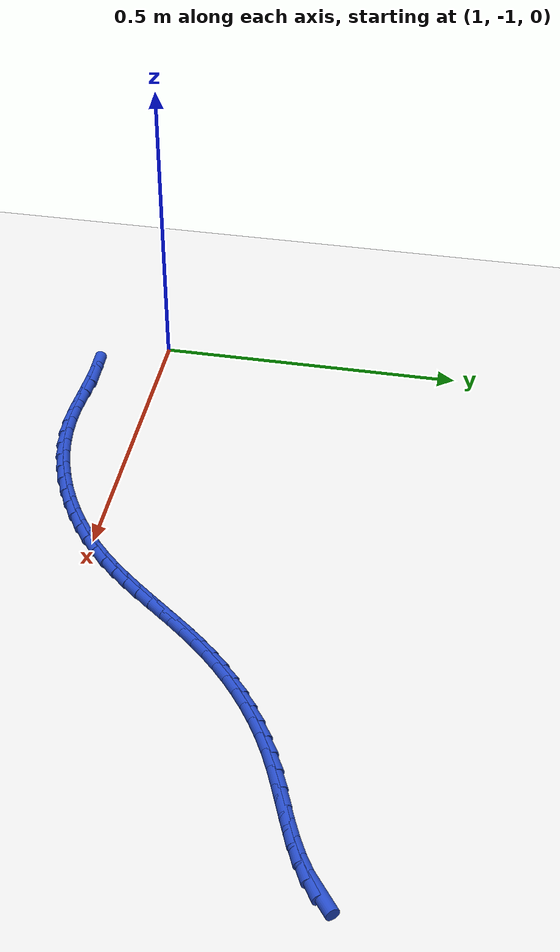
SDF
<sdf version="1.6">
 <world name="default">
  <model name="ground_plane">
   <static>1</static>
   <link name="link">
    <collision name="collision">
     <geometry><plane><normal>0 0 1</normal><size>100 100</size></plane></geometry>
     <surface><friction><ode><mu>100</mu><mu2>50</mu2></ode></friction></surface>
    </collision>
    <visual name="visual">
     <cast_shadows>0</cast_shadows>
     <geometry><plane><normal>0 0 1</normal><size>100 100</size></plane></geometry>
     <material>
      <script><uri>file://media/materials/scripts/gazebo.material</uri><name>Gazebo/WhiteGlow</name></script>
     </material>
    </visual>
   </link>
  </model>
  <model name="line">
   <link name="link_146">
    <pose>2.069440715215967 -0.5567842232743673 0.01 0 1.57 0.6580714703849816</pose>
    <collision name="collision">
     <geometry><cylinder><radius>0.01</radius><length>0.08</length></cylinder></geometry>
    </collision>
    <visual name="visual">
     <material>
      <script><name>Gazebo/Blue</name><uri>file://media/materials/scripts/gazebo.material</uri></script>
     </material>
     <geometry><cylinder><radius>0.01</radius><length>0.08</length></cylinder></geometry>
    </visual>
   </link>
   <link name="link_147">
    <pose>2.048687214246349 -0.5728270815063439 0.01 0 1.57 0.5461949963556508</pose>
    <collision name="collision">
     <geometry><cylinder><radius>0.01</radius><length>0.08</length></cylinder></geometry>
    </collision>
    <visual name="visual">
     <material>
      <script><name>Gazebo/Blue</name><uri>file://media/materials/scripts/gazebo.material</uri></script>
     </material>
     <geometry><cylinder><radius>0.01</radius><length>0.08</length></cylinder></geometry>
    </visual>
   </link>
   <link name="link_148">
    <pose>2.025479815613856 -0.5869344431668911 0.01 0 1.57 0.46634864555167305</pose>
    <collision name="collision">
     <geometry><cylinder><radius>0.01</radius><length>0.08</length></cylinder></geometry>
    </collision>
    <visual name="visual">
     <material>
      <script><name>Gazebo/Blue</name><uri>file://media/materials/scripts/gazebo.material</uri></script>
     </material>
     <geometry><cylinder><radius>0.01</radius><length>0.08</length></cylinder></geometry>
    </visual>
   </link>
   <link name="link_149">
    <pose>2.0003519096016316 -0.5995833503525048 0.01 0 1.57 0.4145348264032584</pose>
    <collision name="collision">
     <geometry><cylinder><radius>0.01</radius><length>0.08</length></cylinder></geometry>
    </collision>
    <visual name="visual">
     <material>
      <script><name>Gazebo/Blue</name><uri>file://media/materials/scripts/gazebo.material</uri></script>
     </material>
     <geometry><cylinder><radius>0.01</radius><length>0.08</length></cylinder></geometry>
    </visual>
   </link>
   <link name="link_150">
    <pose>1.9738368864928213 -0.6112508451596809 0.01 0 1.57 0.38727967800728896</pose>
    <collision name="collision">
     <geometry><cylinder><radius>0.01</radius><length>0.08</length></cylinder></geometry>
    </collision>
    <visual name="visual">
     <material>
      <script><name>Gazebo/Blue</name><uri>file://media/materials/scripts/gazebo.material</uri></script>
     </material>
     <geometry><cylinder><radius>0.01</radius><length>0.08</length></cylinder></geometry>
    </visual>
   </link>
   <link name="link_151">
    <pose>1.9464681365705672 -0.6224139696849148 0.01 0 1.57 0.3823780421875811</pose>
    <collision name="collision">
     <geometry><cylinder><radius>0.01</radius><length>0.08</length></cylinder></geometry>
    </collision>
    <visual name="visual">
     <material>
      <script><name>Gazebo/Blue</name><uri>file://media/materials/scripts/gazebo.material</uri></script>
     </material>
     <geometry><cylinder><radius>0.01</radius><length>0.08</length></cylinder></geometry>
    </visual>
   </link>
   <link name="link_152">
    <pose>1.918779050118015 -0.6335497660247026 0.01 0 1.57 0.3990371981720585</pose>
    <collision name="collision">
     <geometry><cylinder><radius>0.01</radius><length>0.08</length></cylinder></geometry>
    </collision>
    <visual name="visual">
     <material>
      <script><name>Gazebo/Blue</name><uri>file://media/materials/scripts/gazebo.material</uri></script>
     </material>
     <geometry><cylinder><radius>0.01</radius><length>0.08</length></cylinder></geometry>
    </visual>
   </link>
   <link name="link_153">
    <pose>1.8913030174183088 -0.64513527627554 0.01 0 1.57 0.4375475421445148</pose>
    <collision name="collision">
     <geometry><cylinder><radius>0.01</radius><length>0.08</length></cylinder></geometry>
    </collision>
    <visual name="visual">
     <material>
      <script><name>Gazebo/Blue</name><uri>file://media/materials/scripts/gazebo.material</uri></script>
     </material>
     <geometry><cylinder><radius>0.01</radius><length>0.08</length></cylinder></geometry>
    </visual>
   </link>
   <link name="link_154">
    <pose>1.8645674080098094 -0.6576418727206602 0.01 0 1.57 0.489168060065895</pose>
    <collision name="collision">
     <geometry><cylinder><radius>0.01</radius><length>0.08</length></cylinder></geometry>
    </collision>
    <visual name="visual">
     <material>
      <script><name>Gazebo/Blue</name><uri>file://media/materials/scripts/gazebo.material</uri></script>
     </material>
     <geometry><cylinder><radius>0.01</radius><length>0.08</length></cylinder></geometry>
    </visual>
   </link>
   <link name="link_155">
    <pose>1.8388675565687087 -0.6713224174113418 0.01 0 1.57 0.5411104046782403</pose>
    <collision name="collision">
     <geometry><cylinder><radius>0.01</radius><length>0.08</length></cylinder></geometry>
    </collision>
    <visual name="visual">
     <material>
      <script><name>Gazebo/Blue</name><uri>file://media/materials/scripts/gazebo.material</uri></script>
     </material>
     <geometry><cylinder><radius>0.01</radius><length>0.08</length></cylinder></geometry>
    </visual>
   </link>
   <link name="link_156">
    <pose>1.8141985406134744 -0.6861470163484766 0.01 0 1.57 0.5922213272752584</pose>
    <collision name="collision">
     <geometry><cylinder><radius>0.01</radius><length>0.08</length></cylinder></geometry>
    </collision>
    <visual name="visual">
     <material>
      <script><name>Gazebo/Blue</name><uri>file://media/materials/scripts/gazebo.material</uri></script>
     </material>
     <geometry><cylinder><radius>0.01</radius><length>0.08</length></cylinder></geometry>
    </visual>
   </link>
   <link name="link_157">
    <pose>1.790535487666208 -0.7020669883632479 0.01 0 1.57 0.6422355987090467</pose>
    <collision name="collision">
     <geometry><cylinder><radius>0.01</radius><length>0.08</length></cylinder></geometry>
    </collision>
    <visual name="visual">
     <material>
      <script><name>Gazebo/Blue</name><uri>file://media/materials/scripts/gazebo.material</uri></script>
     </material>
     <geometry><cylinder><radius>0.01</radius><length>0.08</length></cylinder></geometry>
    </visual>
   </link>
   <link name="link_158">
    <pose>1.7678535252490102 -0.7190336522868385 0.01 0 1.57 0.6909201364588902</pose>
    <collision name="collision">
     <geometry><cylinder><radius>0.01</radius><length>0.08</length></cylinder></geometry>
    </collision>
    <visual name="visual">
     <material>
      <script><name>Gazebo/Blue</name><uri>file://media/materials/scripts/gazebo.material</uri></script>
     </material>
     <geometry><cylinder><radius>0.01</radius><length>0.08</length></cylinder></geometry>
    </visual>
   </link>
   <link name="link_159">
    <pose>1.7461277808839815 -0.7369983269504318 0.01 0 1.57 0.7380784349796908</pose>
    <collision name="collision">
     <geometry><cylinder><radius>0.01</radius><length>0.08</length></cylinder></geometry>
    </collision>
    <visual name="visual">
     <material>
      <script><name>Gazebo/Blue</name><uri>file://media/materials/scripts/gazebo.material</uri></script>
     </material>
     <geometry><cylinder><radius>0.01</radius><length>0.08</length></cylinder></geometry>
    </visual>
   </link>
   <link name="link_160">
    <pose>1.7253333820932222 -0.7559123311852101 0.01 0 1.57 0.7835526164045088</pose>
    <collision name="collision">
     <geometry><cylinder><radius>0.01</radius><length>0.08</length></cylinder></geometry>
    </collision>
    <visual name="visual">
     <material>
      <script><name>Gazebo/Blue</name><uri>file://media/materials/scripts/gazebo.material</uri></script>
     </material>
     <geometry><cylinder><radius>0.01</radius><length>0.08</length></cylinder></geometry>
    </visual>
   </link>
   <link name="link_161">
    <pose>1.7054454563988333 -0.7757269838223568 0.01 0 1.57 0.8271576795718446</pose>
    <collision name="collision">
     <geometry><cylinder><radius>0.01</radius><length>0.08</length></cylinder></geometry>
    </collision>
    <visual name="visual">
     <material>
      <script><name>Gazebo/Blue</name><uri>file://media/materials/scripts/gazebo.material</uri></script>
     </material>
     <geometry><cylinder><radius>0.01</radius><length>0.08</length></cylinder></geometry>
    </visual>
   </link>
   <link name="link_162">
    <pose>1.6864376568855208 -0.7963924848829765 0.01 0 1.57 0.8650916578554474</pose>
    <collision name="collision">
     <geometry><cylinder><radius>0.01</radius><length>0.08</length></cylinder></geometry>
    </collision>
    <visual name="visual">
     <material>
      <script><name>Gazebo/Blue</name><uri>file://media/materials/scripts/gazebo.material</uri></script>
     </material>
     <geometry><cylinder><radius>0.01</radius><length>0.08</length></cylinder></geometry>
    </visual>
   </link>
   <link name="link_163">
    <pose>1.6682002167945444 -0.8177957350158706 0.01 0 1.57 0.8916839570529763</pose>
    <collision name="collision">
     <geometry><cylinder><radius>0.01</radius><length>0.08</length></cylinder></geometry>
    </collision>
    <visual name="visual">
     <material>
      <script><name>Gazebo/Blue</name><uri>file://media/materials/scripts/gazebo.material</uri></script>
     </material>
     <geometry><cylinder><radius>0.01</radius><length>0.08</length></cylinder></geometry>
    </visual>
   </link>
   <link name="link_164">
    <pose>1.650496889716646 -0.8397276615119877 0.01 0 1.57 0.9065258919199632</pose>
    <collision name="collision">
     <geometry><cylinder><radius>0.01</radius><length>0.08</length></cylinder></geometry>
    </collision>
    <visual name="visual">
     <material>
      <script><name>Gazebo/Blue</name><uri>file://media/materials/scripts/gazebo.material</uri></script>
     </material>
     <geometry><cylinder><radius>0.01</radius><length>0.08</length></cylinder></geometry>
    </visual>
   </link>
   <link name="link_165">
    <pose>1.6330808724434918 -0.8619711811131393 0.01 0 1.57 0.9097116606873492</pose>
    <collision name="collision">
     <geometry><cylinder><radius>0.01</radius><length>0.08</length></cylinder></geometry>
    </collision>
    <visual name="visual">
     <material>
      <script><name>Gazebo/Blue</name><uri>file://media/materials/scripts/gazebo.material</uri></script>
     </material>
     <geometry><cylinder><radius>0.01</radius><length>0.08</length></cylinder></geometry>
    </visual>
   </link>
   <link name="link_166">
    <pose>1.6157053617667467 -0.8843092105611362 0.01 0 1.57 0.90130761862848</pose>
    <collision name="collision">
     <geometry><cylinder><radius>0.01</radius><length>0.08</length></cylinder></geometry>
    </collision>
    <visual name="visual">
     <material>
      <script><name>Gazebo/Blue</name><uri>file://media/materials/scripts/gazebo.material</uri></script>
     </material>
     <geometry><cylinder><radius>0.01</radius><length>0.08</length></cylinder></geometry>
    </visual>
   </link>
   <link name="link_167">
    <pose>1.5981235544780774 -0.9065246665977897 0.01 0 1.57 0.8813398409417988</pose>
    <collision name="collision">
     <geometry><cylinder><radius>0.01</radius><length>0.08</length></cylinder></geometry>
    </collision>
    <visual name="visual">
     <material>
      <script><name>Gazebo/Blue</name><uri>file://media/materials/scripts/gazebo.material</uri></script>
     </material>
     <geometry><cylinder><radius>0.01</radius><length>0.08</length></cylinder></geometry>
    </visual>
   </link>
   <link name="link_168">
    <pose>1.5800886473691498 -0.9284004659649108 0.01 0 1.57 0.8498282022787165</pose>
    <collision name="collision">
     <geometry><cylinder><radius>0.01</radius><length>0.08</length></cylinder></geometry>
    </collision>
    <visual name="visual">
     <material>
      <script><name>Gazebo/Blue</name><uri>file://media/materials/scripts/gazebo.material</uri></script>
     </material>
     <geometry><cylinder><radius>0.01</radius><length>0.08</length></cylinder></geometry>
    </visual>
   </link>
   <link name="link_169">
    <pose>1.5613538372316296 -0.9497195254043104 0.01 0 1.57 0.8068661450217093</pose>
    <collision name="collision">
     <geometry><cylinder><radius>0.01</radius><length>0.08</length></cylinder></geometry>
    </collision>
    <visual name="visual">
     <material>
      <script><name>Gazebo/Blue</name><uri>file://media/materials/scripts/gazebo.material</uri></script>
     </material>
     <geometry><cylinder><radius>0.01</radius><length>0.08</length></cylinder></geometry>
    </visual>
   </link>
   <link name="link_170">
    <pose>1.5416723208571832 -0.9702647616578002 0.01 0 1.57 0.7529644872456507</pose>
    <collision name="collision">
     <geometry><cylinder><radius>0.01</radius><length>0.08</length></cylinder></geometry>
    </collision>
    <visual name="visual">
     <material>
      <script><name>Gazebo/Blue</name><uri>file://media/materials/scripts/gazebo.material</uri></script>
     </material>
     <geometry><cylinder><radius>0.01</radius><length>0.08</length></cylinder></geometry>
    </visual>
   </link>
   <link name="link_171">
    <pose>1.5208039809717637 -0.9898215074656246 0.01 0 1.57 0.6941201477556359</pose>
    <collision name="collision">
     <geometry><cylinder><radius>0.01</radius><length>0.08</length></cylinder></geometry>
    </collision>
    <visual name="visual">
     <material>
      <script><name>Gazebo/Blue</name><uri>file://media/materials/scripts/gazebo.material</uri></script>
     </material>
     <geometry><cylinder><radius>0.01</radius><length>0.08</length></cylinder></geometry>
    </visual>
   </link>
   <link name="link_172">
    <pose>1.4986783263436154 -1.008236390853761 0.01 0 1.57 0.6359909478491984</pose>
    <collision name="collision">
     <geometry><cylinder><radius>0.01</radius><length>0.08</length></cylinder></geometry>
    </collision>
    <visual name="visual">
     <material>
      <script><name>Gazebo/Blue</name><uri>file://media/materials/scripts/gazebo.material</uri></script>
     </material>
     <geometry><cylinder><radius>0.01</radius><length>0.08</length></cylinder></geometry>
    </visual>
   </link>
   <link name="link_173">
    <pose>1.4754037942760525 -1.0254206966398824 0.01 0 1.57 0.5783661150583068</pose>
    <collision name="collision">
     <geometry><cylinder><radius>0.01</radius><length>0.08</length></cylinder></geometry>
    </collision>
    <visual name="visual">
     <material>
      <script><name>Gazebo/Blue</name><uri>file://media/materials/scripts/gazebo.material</uri></script>
     </material>
     <geometry><cylinder><radius>0.01</radius><length>0.08</length></cylinder></geometry>
    </visual>
   </link>
   <link name="link_174">
    <pose>1.4510973701679004 -1.041288798542103 0.01 0 1.57 0.5207611123980584</pose>
    <collision name="collision">
     <geometry><cylinder><radius>0.01</radius><length>0.08</length></cylinder></geometry>
    </collision>
    <visual name="visual">
     <material>
      <script><name>Gazebo/Blue</name><uri>file://media/materials/scripts/gazebo.material</uri></script>
     </material>
     <geometry><cylinder><radius>0.01</radius><length>0.08</length></cylinder></geometry>
    </visual>
   </link>
   <link name="link_175">
    <pose>1.4258760394179844 -1.0557550702785377 0.01 0 1.57 0.4626998400437327</pose>
    <collision name="collision">
     <geometry><cylinder><radius>0.01</radius><length>0.08</length></cylinder></geometry>
    </collision>
    <visual name="visual">
     <material>
      <script><name>Gazebo/Blue</name><uri>file://media/materials/scripts/gazebo.material</uri></script>
     </material>
     <geometry><cylinder><radius>0.01</radius><length>0.08</length></cylinder></geometry>
    </visual>
   </link>
   <link name="link_176">
    <pose>1.3998567874251295 -1.0687338855672994 0.01 0 1.57 0.4037139768241626</pose>
    <collision name="collision">
     <geometry><cylinder><radius>0.01</radius><length>0.08</length></cylinder></geometry>
    </collision>
    <visual name="visual">
     <material>
      <script><name>Gazebo/Blue</name><uri>file://media/materials/scripts/gazebo.material</uri></script>
     </material>
     <geometry><cylinder><radius>0.01</radius><length>0.08</length></cylinder></geometry>
    </visual>
   </link>
   <link name="link_177">
    <pose>1.3731565995881605 -1.0801396181265035 0.01 0 1.57 0.34334370734259845</pose>
    <collision name="collision">
     <geometry><cylinder><radius>0.01</radius><length>0.08</length></cylinder></geometry>
    </collision>
    <visual name="visual">
     <material>
      <script><name>Gazebo/Blue</name><uri>file://media/materials/scripts/gazebo.material</uri></script>
     </material>
     <geometry><cylinder><radius>0.01</radius><length>0.08</length></cylinder></geometry>
    </visual>
   </link>
   <link name="link_178">
    <pose>1.3458924613059025 -1.0898866416742636 0.01 0 1.57 0.28114088536437487</pose>
    <collision name="collision">
     <geometry><cylinder><radius>0.01</radius><length>0.08</length></cylinder></geometry>
    </collision>
    <visual name="visual">
     <material>
      <script><name>Gazebo/Blue</name><uri>file://media/materials/scripts/gazebo.material</uri></script>
     </material>
     <geometry><cylinder><radius>0.01</radius><length>0.08</length></cylinder></geometry>
    </visual>
   </link>
   <link name="link_179">
    <pose>1.3181813579771813 -1.0978893299286947 0.01 0 1.57 0.21667576550205314</pose>
    <collision name="collision">
     <geometry><cylinder><radius>0.01</radius><length>0.08</length></cylinder></geometry>
    </collision>
    <visual name="visual">
     <material>
      <script><name>Gazebo/Blue</name><uri>file://media/materials/scripts/gazebo.material</uri></script>
     </material>
     <geometry><cylinder><radius>0.01</radius><length>0.08</length></cylinder></geometry>
    </visual>
   </link>
   <link name="link_180">
    <pose>1.290140275000822 -1.1040620566079098 0.01 0 1.57 0.14954849699392803</pose>
    <collision name="collision">
     <geometry><cylinder><radius>0.01</radius><length>0.08</length></cylinder></geometry>
    </collision>
    <visual name="visual">
     <material>
      <script><name>Gazebo/Blue</name><uri>file://media/materials/scripts/gazebo.material</uri></script>
     </material>
     <geometry><cylinder><radius>0.01</radius><length>0.08</length></cylinder></geometry>
    </visual>
   </link>
   <link name="link_181">
    <pose>1.2618861977756486 -1.1083191954300233 0.01 0 1.57 0.07940654718988924</pose>
    <collision name="collision">
     <geometry><cylinder><radius>0.01</radius><length>0.08</length></cylinder></geometry>
    </collision>
    <visual name="visual">
     <material>
      <script><name>Gazebo/Blue</name><uri>file://media/materials/scripts/gazebo.material</uri></script>
     </material>
     <geometry><cylinder><radius>0.01</radius><length>0.08</length></cylinder></geometry>
    </visual>
   </link>
   <link name="link_182">
    <pose>1.233536111538817 -1.1105751213899469 0.01 0 1.57 0.011235056551305338</pose>
    <collision name="collision">
     <geometry><cylinder><radius>0.01</radius><length>0.08</length></cylinder></geometry>
    </collision>
    <visual name="visual">
     <material>
      <script><name>Gazebo/Blue</name><uri>file://media/materials/scripts/gazebo.material</uri></script>
     </material>
     <geometry><cylinder><radius>0.01</radius><length>0.08</length></cylinder></geometry>
    </visual>
   </link>
   <link name="link_183">
    <pose>1.2051880820476897 -1.110893626505772 0.01 0 1.57 -0.03507554770213822</pose>
    <collision name="collision">
     <geometry><cylinder><radius>0.01</radius><length>0.08</length></cylinder></geometry>
    </collision>
    <visual name="visual">
     <material>
      <script><name>Gazebo/Blue</name><uri>file://media/materials/scripts/gazebo.material</uri></script>
     </material>
     <geometry><cylinder><radius>0.01</radius><length>0.08</length></cylinder></geometry>
    </visual>
   </link>
   <link name="link_184">
    <pose>1.1768690879677128 -1.1098999147253856 0.01 0 1.57 -0.054715845468453095</pose>
    <collision name="collision">
     <geometry><cylinder><radius>0.01</radius><length>0.08</length></cylinder></geometry>
    </collision>
    <visual name="visual">
     <material>
      <script><name>Gazebo/Blue</name><uri>file://media/materials/scripts/gazebo.material</uri></script>
     </material>
     <geometry><cylinder><radius>0.01</radius><length>0.08</length></cylinder></geometry>
    </visual>
   </link>
   <link name="link_185">
    <pose>1.1485894150711609 -1.1083510225012474 0.01 0 1.57 -0.04768020303854996</pose>
    <collision name="collision">
     <geometry><cylinder><radius>0.01</radius><length>0.08</length></cylinder></geometry>
    </collision>
    <visual name="visual">
     <material>
      <script><name>Gazebo/Blue</name><uri>file://media/materials/scripts/gazebo.material</uri></script>
     </material>
     <geometry><cylinder><radius>0.01</radius><length>0.08</length></cylinder></geometry>
    </visual>
   </link>
   <link name="link_186">
    <pose>1.1203593491303079 -1.107003986285817 0.01 0 1.57 -0.013777664459058052</pose>
    <collision name="collision">
     <geometry><cylinder><radius>0.01</radius><length>0.08</length></cylinder></geometry>
    </collision>
    <visual name="visual">
     <material>
      <script><name>Gazebo/Blue</name><uri>file://media/materials/scripts/gazebo.material</uri></script>
     </material>
     <geometry><cylinder><radius>0.01</radius><length>0.08</length></cylinder></geometry>
    </visual>
   </link>
   <link name="link_187">
    <pose>1.0921891759174278 -1.106615842531554 0.01 0 1.57 0.041122276107948254</pose>
    <collision name="collision">
     <geometry><cylinder><radius>0.01</radius><length>0.08</length></cylinder></geometry>
    </collision>
    <visual name="visual">
     <material>
      <script><name>Gazebo/Blue</name><uri>file://media/materials/scripts/gazebo.material</uri></script>
     </material>
     <geometry><cylinder><radius>0.01</radius><length>0.08</length></cylinder></geometry>
    </visual>
   </link>
  </model>
 </world>
</sdf>
